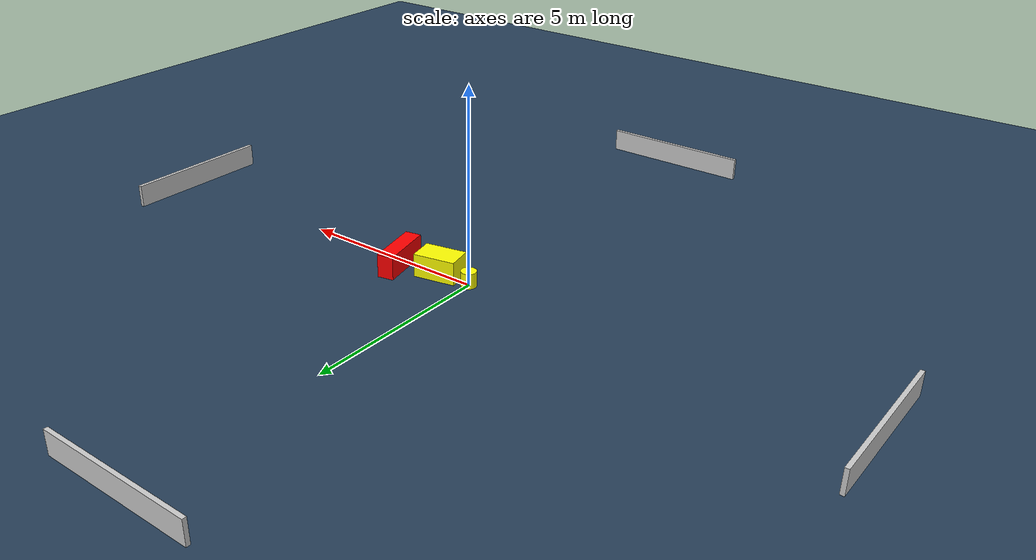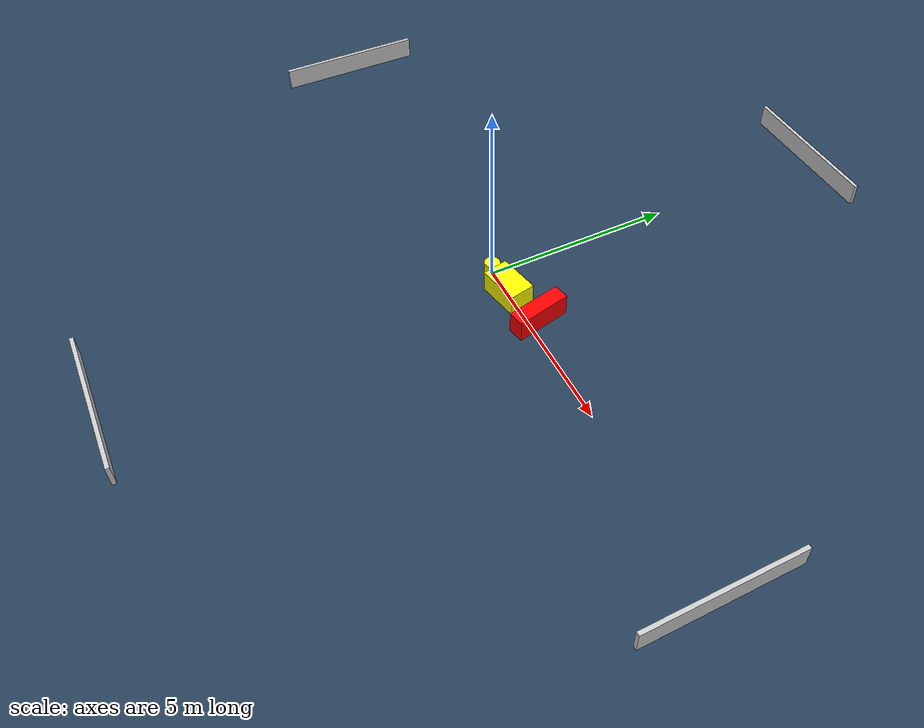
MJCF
<?xml version="1.0" ?>
<mujoco model="generated_environment">
  <option timestep="0.01" integrator="RK4" cone="elliptic"/>
  <default>
    <geom density="1"/>
  </default>
  <asset>
    <texture builtin="gradient" height="3072" name="skybox" rgb1="0.3 0.5 0.7" rgb2="0 0 0" type="skybox" width="512"/>
    <texture builtin="checker" height="300" name="groundplane" rgb1="0.2 0.3 0.4" rgb2="0.1 0.2 0.3" type="2d" width="300"/>
    <material name="groundplane" reflectance="0.2" texrepeat="5 5" texture="groundplane"/>
  </asset>
  <worldbody>
    <light dir="0 0 -1" directional="true" pos="0 0 1.5"/>
    <geom condim="3" friction="0.5 0.005 0.001" material="groundplane" name="floor" pos="0 0 0" size="0 0 0.05" type="plane"/>
    <body name="walls">
      <geom name="wall_1" condim="4" pos="-10.0 0.0 0.3" rgba="0.800000011920929 0.800000011920929 0.800000011920929 1.0" size="0.05 2.0 0.3" type="box"/>
      <geom name="wall_2" condim="4" pos="10.0 0.0 0.3" rgba="0.800000011920929 0.800000011920929 0.800000011920929 1.0" size="0.05 2.0 0.3" type="box"/>
      <geom name="wall_3" condim="4" pos="0.0 -10.0 0.3" rgba="0.800000011920929 0.800000011920929 0.800000011920929 1.0" size="2.0 0.05 0.3" type="box"/>
      <geom name="wall_4" condim="4" pos="0.0 10.0 0.3" rgba="0.800000011920929 0.800000011920929 0.800000011920929 1.0" size="2.0 0.05 0.3" type="box"/>
    </body>
    <body name="robot">
      <joint name="joint_x" type="slide" pos="0 0 0" axis="1 0 0"/>
      <joint name="joint_y" type="slide" pos="0 0 0" axis="0 1 0"/>
      <geom name="robot" type="cylinder" pos="0.0 0.0 0.2" size="0.2 0.2 0.0" mass="5.0" friction="1.0 0.005 0.0001" condim="4" rgba="1.0 1.0 0.0 1.0"/>
    </body>
    <body name="obstacle_1_movable">
      <geom name="obstacle_1_movable" condim="4" pos="0.8818694979491646 0.008749261110179648 0.3" euler="0 0 191.47505287339922" friction="0.0 0.005 0.001" rgba="1.0 1.0 0.0 1.0" size="0.5450207596036496 0.3395682996800554 0.3" type="box" mass="0.1"/>
      <joint type="free"/>
    </body>
    <body name="obstacle_2_static">
      <geom name="obstacle_2_static" condim="4" pos="1.9690297589299492 0.26785813505227773 0.3" euler="0 0 102.32461079635198" friction="0.0 0.005 0.001" rgba="1.0 0.0 0.0 1.0" size="0.7215170011234378 0.20956431232307599 0.3" type="box"/>
    </body>
  </worldbody>
  <actuator>
    <motor name="actuator_x" joint="joint_x" gear="1" ctrlrange="-1 1"/>
    <motor name="actuator_y" joint="joint_y" gear="1" ctrlrange="-1 1"/>
  </actuator>
</mujoco>
